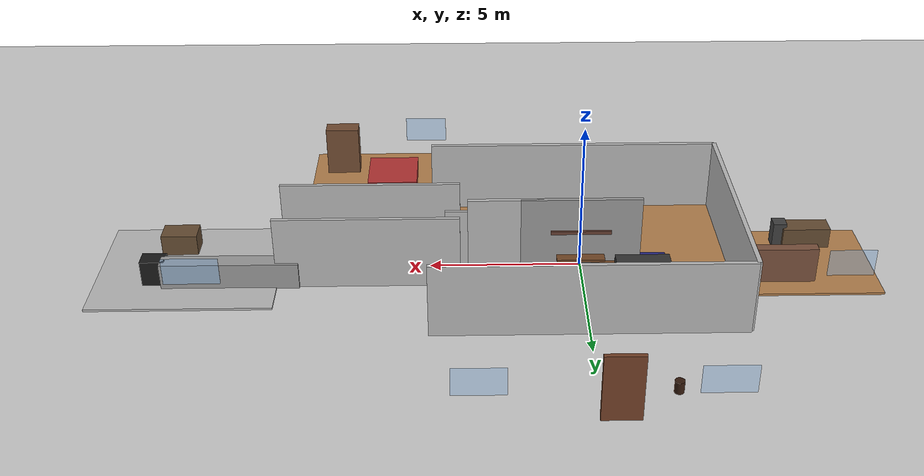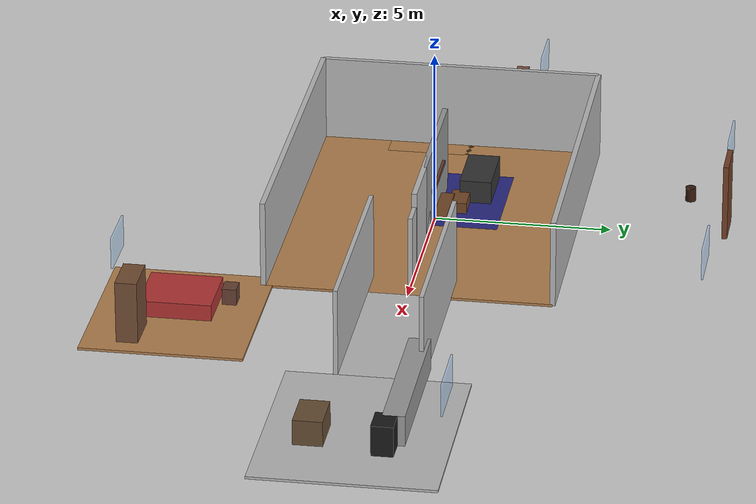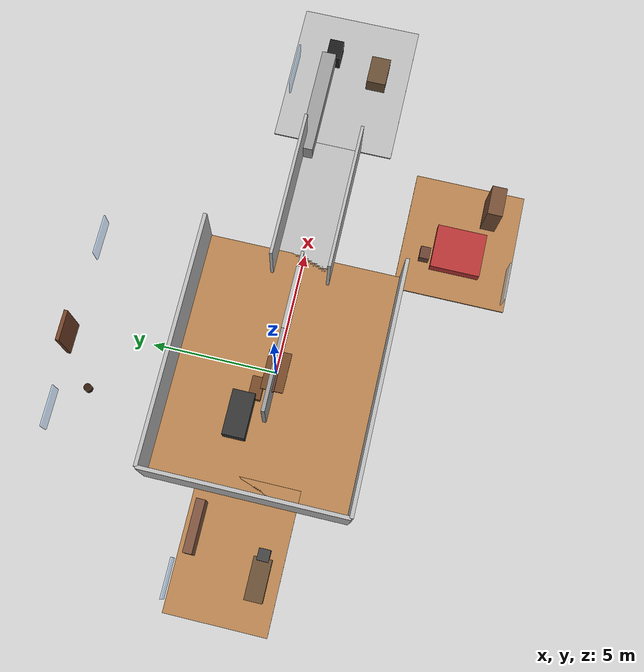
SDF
<?xml version="1.0" ?>
<sdf version="1.6">

  <world name="very_large_house_world">

    <!-- ============================
         Global scene & physics
         ============================ -->
    <gravity>0 0 -9.8</gravity>
    <physics type="ode">
      <max_step_size>0.001</max_step_size>
      <real_time_update_rate>1000</real_time_update_rate>
    </physics>

    <scene>
      <ambient>0.5 0.5 0.5 1</ambient>
      <background>0.7 0.75 0.8 1</background>
    </scene>

    <!-- Sun & ground -->
    <include><uri>model://sun</uri></include>
    <include><uri>model://ground_plane</uri></include>

    <model name="wall_module_template">
      <static>true</static>
      <link name="wall_link">
        <visual name="wall_visual">
          <geometry>
            <box>
              <size>4 0.15 2.5</size>
            </box>
          </geometry>
          <material>
            <script>
              <uri>file://media/materials/scripts/gazebo.material</uri>
              <name>Gazebo/Grey</name>
            </script>
          </material>
        </visual>
        <collision name="wall_col">
          <geometry><box><size>4 0.15 2.5</size></box></geometry>
        </collision>
      </link>
      <pose>0 0 1.25 0 0 0</pose>
    </model>

    <model name="window_module_template">
      <static>true</static>
      <link name="window_link">
        <visual name="glass_visual">
          <geometry><box><size>1.6 0.05 1.0</size></box></geometry>
          <material>
            <ambient>0.6 0.8 1 0.4</ambient>
            <transparency>0.5</transparency>
          </material>
        </visual>
        <collision name="window_col">
          <geometry><box><size>1.6 0.05 1.0</size></box></geometry>
        </collision>
      </link>
      <pose>0 0 1.2 0 0 0</pose>
    </model>

    <model name="door_frame_template">
      <static>true</static>
      <link name="door_link">
        <visual name="door_vis">
          <geometry><box><size>1.0 0.12 2.1</size></box></geometry>
          <material><ambient>0.55 0.35 0.2 1</ambient></material>
        </visual>
        <collision name="door_col"><geometry><box><size>1.0 0.12 2.1</size></box></geometry></collision>
      </link>
      <pose>0 0 1.05 0 0 0</pose>
    </model>

    <!-- ============================================================
         MODULE: Table & shelf (furniture templates)
         ============================================================ -->
    <model name="table_template">
      <static>true</static>
      <link name="table_link">
        <!-- top -->
        <visual name="top">
          <geometry><box><size>1.6 0.9 0.08</size></box></geometry>
          <material><ambient>0.45 0.28 0.15 1</ambient></material>
        </visual>
        <collision name="top_col"><geometry><box><size>1.6 0.9 0.08</size></box></geometry></collision>
        <!-- legs (four small visuals, collision simplified) -->
        <visual name="leg1"><geometry><box><size>0.08 0.08 0.6</size></box></geometry></visual>
      </link>
      <pose>0 0 0.4 0 0 0</pose>
    </model>

    <model name="shelf_template">
      <static>true</static>
      <link name="shelf_link">
        <visual name="shelf_vis"><geometry><box><size>2.0 0.3 0.12</size></box></geometry><material><ambient>0.4 0.25 0.2 1</ambient></material></visual>
        <collision name="shelf_col"><geometry><box><size>2.0 0.3 0.12</size></box></geometry></collision>
      </link>
      <pose>0 0 1.3 0 0 0</pose>
    </model>

    <!-- End of Part 1 -->
    <!-- ================================
         ROOM: LIVING ROOM (Wood floor + carpet zone)
         Centered at (0,0), size roughly 10x8
         ================================ -->
    <model name="living_room_floor">
      <static>true</static>
      <link name="lr_floor">
        <visual name="lr_floor_vis">
          <geometry><box><size>10 8 0.08</size></box></geometry>
          <!-- Wood material for living room -->
          <material>
            <script>
              <uri>file://media/materials/scripts/gazebo.material</uri>
              <name>Gazebo/Wood</name>
            </script>
          </material>
        </visual>
        <collision name="lr_floor_col"><geometry><box><size>10 8 0.08</size></box></geometry></collision>
      </link>
      <pose>0 0 0 0 0 0</pose>
    </model>

    <!-- Carpet patch in living room (decorative) -->
    <model name="living_carpet">
      <static>true</static>
      <link name="carpet">
        <visual name="carpet_vis">
          <geometry><box><size>3.5 2.5 0.04</size></box></geometry>
          <material><ambient>0.15 0.15 0.5 1</ambient></material>
        </visual>
        <collision name="carpet_col"><geometry><box><size>3.5 2.5 0.04</size></box></geometry></collision>
      </link>
      <pose>-1.2 0.6 0.02 0 0 0</pose>
    </model>

    <!-- Living room walls: use wall_module_template scaled via link geometry -->
    <!-- We'll define explicit walls for clarity -->

    <!-- Living room north wall -->
    <model name="living_wall_north">
      <static>true</static>
      <link name="link">
        <visual name="vis"><geometry><box><size>10 0.15 2.5</size></box></geometry></visual>
        <collision name="col"><geometry><box><size>10 0.15 2.5</size></box></geometry></collision>
      </link>
      <pose>0 4 1.25 0 0 0</pose>
    </model>

    <!-- Living room south wall -->
    <model name="living_wall_south">
      <static>true</static>
      <link name="link"><visual name="vis"><geometry><box><size>10 0.15 2.5</size></box></geometry></visual><collision name="col"><geometry><box><size>10 0.15 2.5</size></box></geometry></collision></link>
      <pose>0 -4 1.25 0 0 0</pose>
    </model>

    <!-- Living room west wall -->
    <model name="living_wall_west">
      <static>true</static>
      <link name="link"><visual name="vis"><geometry><box><size>0.15 8 2.5</size></box></geometry></visual><collision name="col"><geometry><box><size>0.15 8 2.5</size></box></geometry></collision></link>
      <pose>-5 0 1.25 0 0 0</pose>
    </model>

    <!-- Living room east wall (partial, with door to hallway) -->
    <model name="living_wall_east_partial">
      <static>true</static>
      <link name="link"><visual name="vis"><geometry><box><size>2.5 0.15 2.5</size></box></geometry></visual><collision name="col"><geometry><box><size>2.5 0.15 2.5</size></box></geometry></collision></link>
      <pose>2.5 0 1.25 0 0 0</pose>
    </model>

    <!-- Door opening: place door frame to connect to hallway -->
    <model name="living_to_hall_door">
      <static>true</static>
      <link name="door"><visual name="v"><geometry><box><size>1.0 0.12 2.1</size></box></geometry></visual><collision name="c"><geometry><box><size>1.0 0.12 2.1</size></box></geometry></collision></link>
      <pose>4 0 1.05 0 0 0</pose>
    </model>

    <!-- Furniture: sofa (simple box) -->
    <model name="sofa">
      <static>true</static>
      <link name="sofa_link">
        <visual name="sofa_vis"><geometry><box><size>1.8 0.9 0.7</size></box></geometry><material><ambient>0.2 0.2 0.2 1</ambient></material></visual>
        <collision name="sofa_col"><geometry><box><size>1.8 0.9 0.7</size></box></geometry></collision>
      </link>
      <pose>-2 1.0 0.35 0 0 0</pose>
    </model>

    <!-- Coffee table -->
    <model name="coffee_table">
      <static>true</static>
      <link name="ct_link">
        <visual name="ct_vis"><geometry><box><size>0.9 0.5 0.35</size></box></geometry><material><ambient>0.45 0.28 0.15 1</ambient></material></visual>
        <collision name="ct_col"><geometry><box><size>0.9 0.5 0.35</size></box></geometry></collision>
      </link>
      <pose>-0.8 0.6 0.175 0 0 0</pose>
    </model>

    <!-- End of Part 2 -->
    <!-- ================================
         Central Hallway (connects living -> kitchen -> bedroom)
         Positioned on +X axis from living room
         ================================ -->
    <model name="hallway_floor">
      <static>true</static>
      <link name="h_floor">
        <visual name="h_vis"><geometry><box><size>6 2.2 0.08</size></box></geometry><material><script><uri>file://media/materials/scripts/gazebo.material</uri><name>Gazebo/Tile</name></script></material></visual>
        <collision name="h_col"><geometry><box><size>6 2.2 0.08</size></box></geometry></collision>
      </link>
      <!-- starts at x=5 (living to hall door placed at x=4) -->
      <pose>7 0 0 0 0 0</pose>
    </model>

    <!-- Hallway walls -->
    <model name="hall_wall_north">
      <static>true</static>
      <link name="link"><visual name="vis"><geometry><box><size>6 0.12 2.5</size></box></geometry></visual><collision name="col"><geometry><box><size>6 0.12 2.5</size></box></geometry></collision></link>
      <pose>7 1.15 1.25 0 0 0</pose>
    </model>

    <model name="hall_wall_south">
      <static>true</static>
      <link name="link"><visual name="vis"><geometry><box><size>6 0.12 2.5</size></box></geometry></visual><collision name="col"><geometry><box><size>6 0.12 2.5</size></box></geometry></collision></link>
      <pose>7 -1.15 1.25 0 0 0</pose>
    </model>

    <model name="kitchen_floor">
      <static>true</static>
      <link name="kf"><visual name="vis"><geometry><box><size>6 5 0.08</size></box></geometry><material><script><uri>file://media/materials/scripts/gazebo.material</uri><name>Gazebo/Tile</name></script></material></visual><collision name="col"><geometry><box><size>6 5 0.08</size></box></geometry></collision></link>
      <pose>13 0 0 0 0 0</pose>
    </model>

    <!-- Kitchen counter (simple long box) -->
    <model name="kitchen_counter">
      <static>true</static>
      <link name="counter">
        <visual name="vis"><geometry><box><size>4.5 0.6 0.9</size></box></geometry><material><ambient>0.6 0.6 0.6 1</ambient></material></visual>
        <collision name="col"><geometry><box><size>4.5 0.6 0.9</size></box></geometry></collision>
      </link>
      <pose>11.5 1.0 0.45 0 0 0</pose>
    </model>

    <!-- Stove -->
    <model name="stove">
      <static>true</static>
      <link name="stove_link"><visual name="vis"><geometry><box><size>0.8 0.6 0.9</size></box></geometry><material><ambient>0.1 0.1 0.1 1</ambient></material></visual><collision name="col"><geometry><box><size>0.8 0.6 0.9</size></box></geometry></collision></link>
      <pose>14 0.8 0.45 0 0 0</pose>
    </model>

    <!-- Kitchen table (small) -->
    <model name="kitchen_table">
      <static>true</static>
      <link name="kt"><visual name="vis"><geometry><box><size>1.2 0.8 0.75</size></box></geometry><material><ambient>0.4 0.3 0.2 1</ambient></material></visual><collision name="col"><geometry><box><size>1.2 0.8 0.75</size></box></geometry></collision></link>
      <pose>13.5 -1.2 0.375 0 0 0</pose>
    </model>

    <!-- Kitchen window above counter -->
    <model name="kitchen_window">
      <static>true</static>
      <link name="kw">
        <visual name="kv"><geometry><box><size>1.8 0.05 0.9</size></box></geometry><material><ambient>0.6 0.8 1 0.45</ambient></material></visual>
        <collision name="kcol"><geometry><box><size>1.8 0.05 0.9</size></box></geometry></collision>
      </link>
      <pose>12.5 2.2 1.25 0 0 0</pose>
    </model>

    <!-- End of Part 3 -->
    <model name="bedroom_floor">
      <static>true</static>
      <link name="bf"><visual name="vis"><geometry><box><size>5 4.5 0.08</size></box></geometry><material><script><uri>file://media/materials/scripts/gazebo.material</uri><name>Gazebo/Wood</name></script></material></visual><collision name="col"><geometry><box><size>5 4.5 0.08</size></box></geometry></collision></link>
      <pose>7 -6 0 0 0 0</pose>
    </model>

    <!-- Bed -->
    <model name="bed">
      <static>true</static>
      <link name="bed_link"><visual name="v"><geometry><box><size>1.8 2.0 0.5</size></box></geometry><material><ambient>0.7 0.2 0.2 1</ambient></material></visual><collision name="c"><geometry><box><size>1.8 2.0 0.5</size></box></geometry></collision></link>
      <pose>6.5 -6 0.25 0 0 0</pose>
    </model>

    <!-- Nightstand -->
    <model name="nightstand">
      <static>true</static>
      <link name="ns"><visual name="v"><geometry><box><size>0.5 0.4 0.5</size></box></geometry><material><ambient>0.4 0.25 0.2 1</ambient></material></visual><collision name="c"><geometry><box><size>0.5 0.4 0.5</size></box></geometry></collision></link>
      <pose>6.1 -4.7 0.25 0 0 0</pose>
    </model>

    <!-- Wardrobe -->
    <model name="wardrobe">
      <static>true</static>
      <link name="wr"><visual name="v"><geometry><box><size>1.2 0.6 1.8</size></box></geometry><material><ambient>0.45 0.3 0.2 1</ambient></material></visual><collision name="c"><geometry><box><size>1.2 0.6 1.8</size></box></geometry></collision></link>
      <pose>8.4 -7 0.9 0 0 0</pose>
    </model>

    <!-- Bedroom window -->
    <model name="bedroom_window">
      <static>true</static>
      <link name="bw"><visual name="v"><geometry><box><size>1.5 0.05 0.9</size></box></geometry><material><ambient>0.6 0.8 1 0.45</ambient></material></visual><collision name="c"><geometry><box><size>1.5 0.05 0.9</size></box></geometry></collision></link>
      <pose>5.3 -8 1.2 0 0 0</pose>
    </model>

    <!-- ============================================================
         OFFICE: at x = -8 (left side), has desk, chair, shelf
         ============================================================ -->
    <model name="office_floor">
      <static>true</static>
      <link name="of"><visual name="v"><geometry><box><size>5.5 4 0.08</size></box></geometry><material><script><uri>file://media/materials/scripts/gazebo.material</uri><name>Gazebo/Wood</name></script></material></visual><collision name="c"><geometry><box><size>5.5 4 0.08</size></box></geometry></collision></link>
      <pose>-7 0 0 0 0 0</pose>
    </model>

    <!-- Desk -->
    <model name="desk">
      <static>true</static>
      <link name="desk_link"><visual name="v"><geometry><box><size>1.6 0.7 0.75</size></box></geometry><material><ambient>0.4 0.3 0.2 1</ambient></material></visual><collision name="c"><geometry><box><size>1.6 0.7 0.75</size></box></geometry></collision></link>
      <pose>-7.8 -1.2 0.375 0 0 0</pose>
    </model>

    <!-- Chair (simple box) -->
    <model name="chair">
      <static>true</static>
      <link name="ch"><visual name="v"><geometry><box><size>0.45 0.45 0.9</size></box></geometry><material><ambient>0.25 0.25 0.25 1</ambient></material></visual><collision name="c"><geometry><box><size>0.45 0.45 0.9</size></box></geometry></collision></link>
      <pose>-6.9 -1.2 0.45 0 0 0</pose>
    </model>

    <!-- Shelf in office -->
    <model name="office_shelf">
      <static>true</static>
      <link name="os"><visual name="v"><geometry><box><size>2.0 0.35 1.2</size></box></geometry><material><ambient>0.48 0.32 0.24 1</ambient></material></visual><collision name="c"><geometry><box><size>2.0 0.35 1.2</size></box></geometry></collision></link>
      <pose>-6.5 1.5 0.9 0 0 0</pose>
    </model>

    <!-- Office window -->
    <model name="office_window">
      <static>true</static>
      <link name="ow"><visual name="v"><geometry><box><size>1.5 0.05 0.9</size></box></geometry><material><ambient>0.6 0.8 1 0.45</ambient></material></visual><collision name="c"><geometry><box><size>1.5 0.05 0.9</size></box></geometry></collision></link>
      <pose>-8.5 2.0 1.2 0 0 0</pose>
    </model>

    <!-- End of Part 4 -->
    <!-- ============================================================
         ENTRANCE DOOR at world front (main entrance)
         ============================================================ -->
    <model name="main_entrance_door">
      <static>true</static>
      <link name="ed">
        <visual name="ev"><geometry><box><size>1.2 0.15 2.2</size></box></geometry><material><ambient>0.45 0.25 0.15 1</ambient></material></visual>
        <collision name="ec"><geometry><box><size>1.2 0.15 2.2</size></box></geometry></collision>
      </link>
      <pose>-0.5 8.2 1.1 0 0 0</pose>
    </model>

    <!-- Exterior windows for facade (simple repeated modules) -->
    <model name="front_window_left">
      <static>true</static>
      <link name="fwl"><visual name="v"><geometry><box><size>1.6 0.05 0.9</size></box></geometry><material><ambient>0.6 0.8 1 0.45</ambient></material></visual><collision name="c"><geometry><box><size>1.6 0.05 0.9</size></box></geometry></collision></link>
      <pose>-3.5 8.0 1.2 0 0 0</pose>
    </model>

    <model name="front_window_right">
      <static>true</static>
      <link name="fwr"><visual name="v"><geometry><box><size>1.6 0.05 0.9</size></box></geometry><material><ambient>0.6 0.8 1 0.45</ambient></material></visual><collision name="c"><geometry><box><size>1.6 0.05 0.9</size></box></geometry></collision></link>
      <pose>3.5 8.0 1.2 0 0 0</pose>
    </model>

    <!-- ============================================================
         DECORATIVE: Potted Plant (simple cylinder + box)
         ============================================================ -->
    <model name="potted_plant">
      <static>true</static>
      <link name="pp">
        <visual name="pot"><geometry><cylinder><radius>0.15</radius><length>0.4</length></cylinder></geometry><material><ambient>0.2 0.1 0.05 1</ambient></material></visual>
        <collision name="pc"><geometry><cylinder><radius>0.15</radius><length>0.4</length></cylinder></geometry></collision>
      </link>
      <pose> -2.3 7.0 0.2 0 0 0</pose>
    </model>

    <!-- ============================================================
         LIGHTING — extra point lights for interior ambiance
         ============================================================ -->
    <light name="lr_point_light" type="point">
      <pose>0 0 3 0 0 0</pose>
      <diffuse>1 0.98 0.9 1</diffuse>
      <specular>0.2 0.2 0.2 1</specular>
      <attenuation>
        <range>10</range>
        <constant>0.5</constant>
        <linear>0.01</linear>
        <quadratic>0.001</quadratic>
      </attenuation>
    </light>

    <light name="kitchen_light" type="point">
      <pose>13 0 3 0 0 0</pose>
      <diffuse>1 1 1 1</diffuse>
      <specular>0.2 0.2 0.2 1</specular>
      <attenuation>
        <range>8</range>
        <constant>0.5</constant>
        <linear>0.01</linear>
        <quadratic>0.001</quadratic>
      </attenuation>
    </light>

    <model name="spawn_point_robot1">
      <static>true</static>
      <link name="sp1"><pose>0 1 0 0 0 0</pose></link>
    </model>

    <model name="spawn_point_robot2">
      <static>true</static>
      <link name="sp2"><pose>2 -1 0 0 0 0</pose></link>
    </model>

    <model name="spawn_point_robot3">
      <static>true</static>
      <link name="sp3"><pose>8 0 0 0 0 0</pose></link>
    </model>

    <!-- End of Part 5 -->

  </world>
</sdf>
